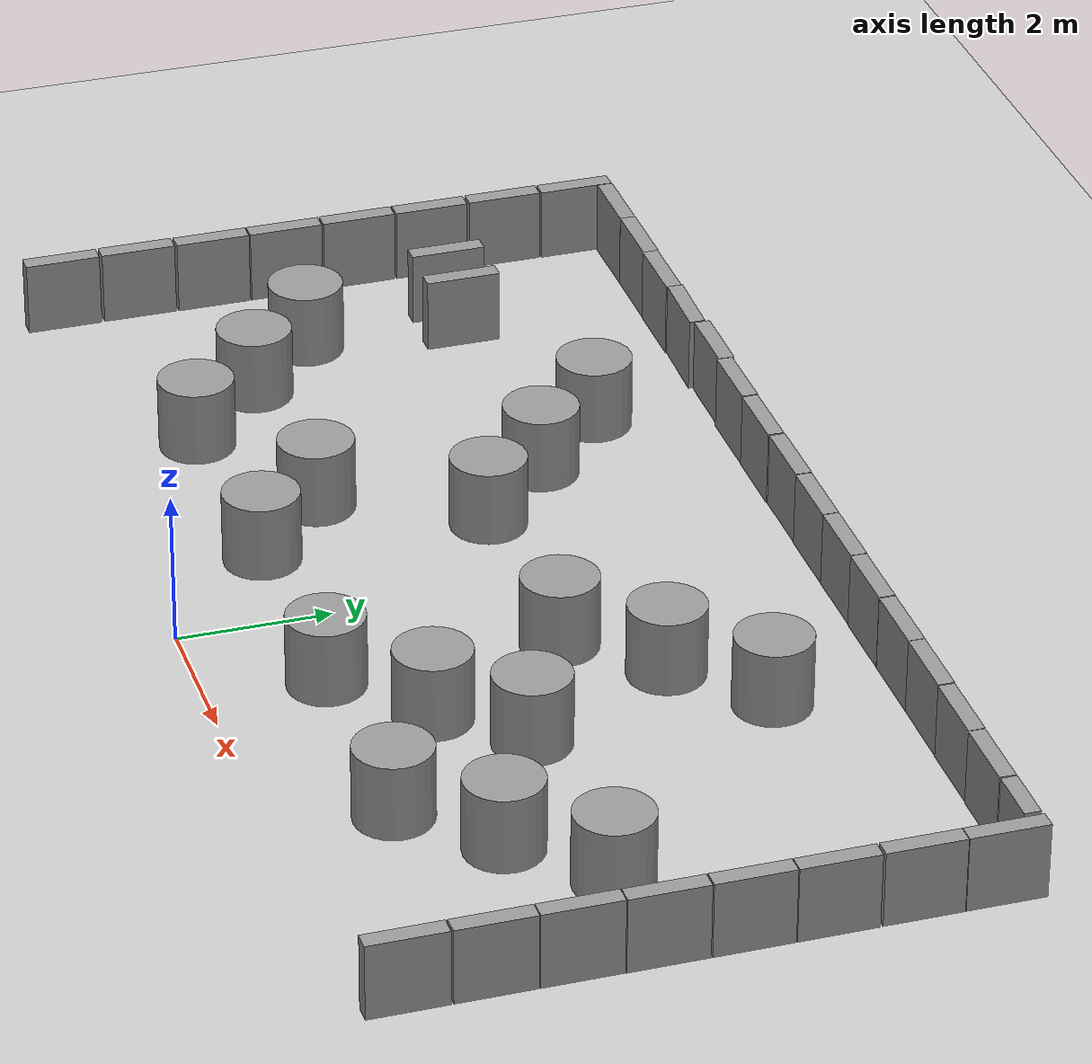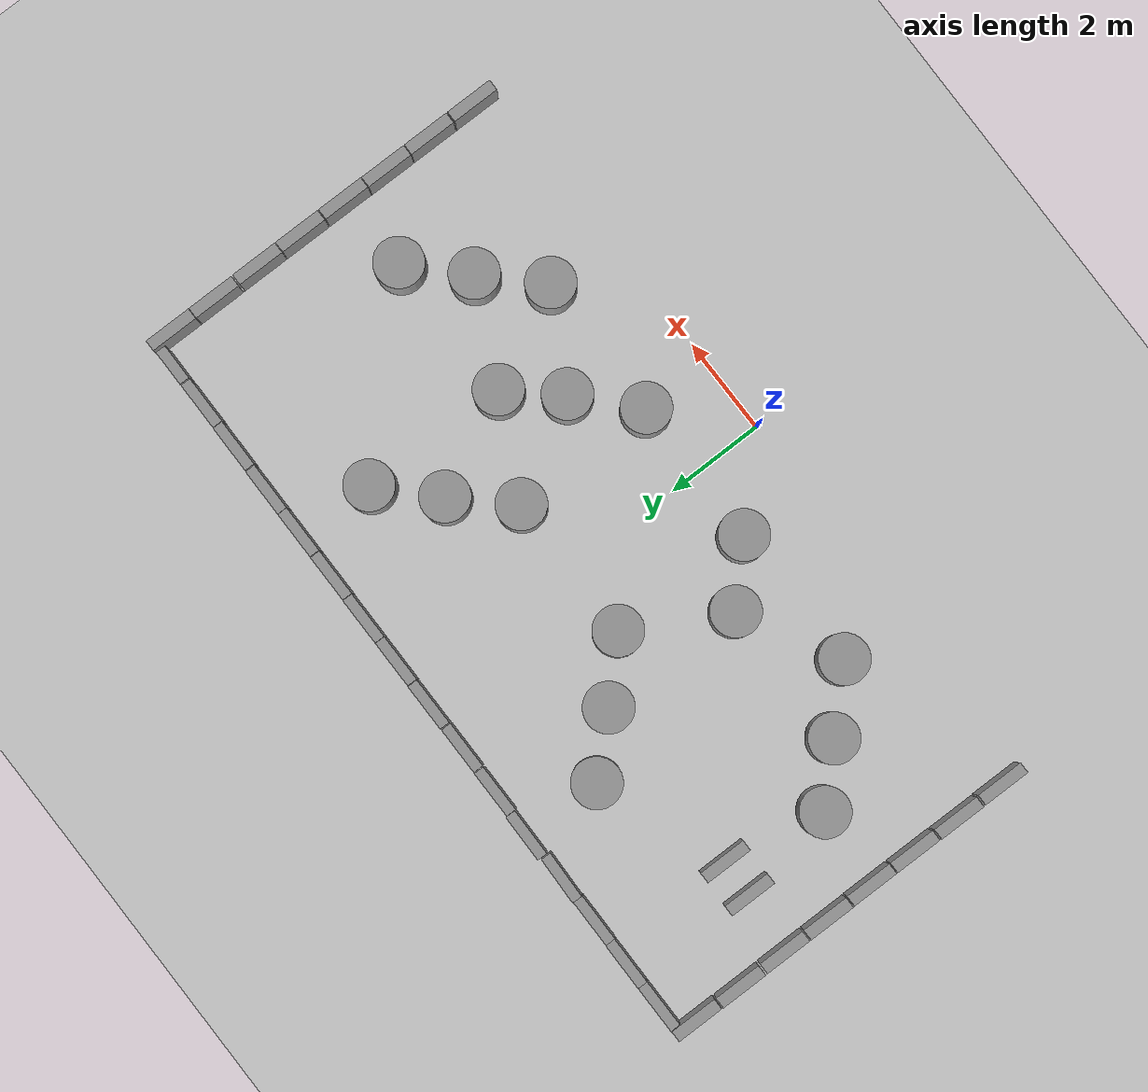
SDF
<sdf version="1.6">
 <world name="default">
  <model name="ground_plane">
   <static>1</static>
   <static>1</static>
   <link name="link">
    <collision name="collision">
     <geometry><plane><normal>0 0 1</normal><size>100 100</size></plane></geometry>
     <surface><friction><ode><mu>100</mu><mu2>50</mu2></ode></friction></surface>
    </collision>
    <visual name="visual">
     <cast_shadows>0</cast_shadows>
     <geometry><plane><normal>0 0 1</normal><size>100 100</size></plane></geometry>
     <material>
      <script><uri>file://media/materials/scripts/gazebo.material</uri><name>Gazebo/Grey</name></script>
     </material>
    </visual>
   </link>
  </model>
  <model name="unit_box_clone">
   <pose>-7.49845 8.11997 0.499999 1e-06 -2e-06 0.000235</pose>
   <link name="link">
    <inertial>
     <mass>1</mass>
     <inertia>
      <ixx>0.166667</ixx>
      <ixy>0</ixy>
      <ixz>0</ixz>
      <iyy>0.166667</iyy>
      <iyz>0</iyz>
      <izz>0.166667</izz>
     </inertia>
    </inertial>
    <collision name="collision"><geometry><box><size>1 0.210541 1</size></box></geometry></collision>
    <visual name="visual">
     <geometry><box><size>1 0.210541 1</size></box></geometry>
     <material>
      <script><name>Gazebo/Grey</name><uri>file://media/materials/scripts/gazebo.material</uri></script>
     </material>
    </visual>
   </link>
  </model>
  <model name="unit_box_clone_0">
   <pose>-6.4973 8.11987 0.499999 -1e-06 -2e-06 -0.002335</pose>
   <link name="link">
    <inertial>
     <mass>1</mass>
     <inertia>
      <ixx>0.166667</ixx>
      <ixy>0</ixy>
      <ixz>0</ixz>
      <iyy>0.166667</iyy>
      <iyz>0</iyz>
      <izz>0.166667</izz>
     </inertia>
    </inertial>
    <collision name="collision"><geometry><box><size>1 0.210541 1</size></box></geometry></collision>
    <visual name="visual">
     <geometry><box><size>1 0.210541 1</size></box></geometry>
     <material>
      <script><name>Gazebo/Grey</name><uri>file://media/materials/scripts/gazebo.material</uri></script>
     </material>
    </visual>
   </link>
  </model>
  <model name="unit_box_clone_1">
   <pose>-5.49732 8.10862 0.499999 -1e-06 -2e-06 -0.002327</pose>
   <link name="link">
    <inertial>
     <mass>1</mass>
     <inertia>
      <ixx>0.166667</ixx>
      <ixy>0</ixy>
      <ixz>0</ixz>
      <iyy>0.166667</iyy>
      <iyz>0</iyz>
      <izz>0.166667</izz>
     </inertia>
    </inertial>
    <collision name="collision"><geometry><box><size>1 0.210541 1</size></box></geometry></collision>
    <visual name="visual">
     <geometry><box><size>1 0.210541 1</size></box></geometry>
     <material>
      <script><name>Gazebo/Grey</name><uri>file://media/materials/scripts/gazebo.material</uri></script>
     </material>
    </visual>
   </link>
  </model>
  <model name="unit_box_clone_2">
   <pose>-4.49485 8.1107 0.499999 -1e-06 -2e-06 -0.026921</pose>
   <link name="link">
    <inertial>
     <mass>1</mass>
     <inertia>
      <ixx>0.166667</ixx>
      <ixy>0</ixy>
      <ixz>0</ixz>
      <iyy>0.166667</iyy>
      <iyz>0</iyz>
      <izz>0.166667</izz>
     </inertia>
    </inertial>
    <collision name="collision"><geometry><box><size>1 0.210541 1</size></box></geometry></collision>
    <visual name="visual">
     <geometry><box><size>1 0.210541 1</size></box></geometry>
     <material>
      <script><name>Gazebo/Grey</name><uri>file://media/materials/scripts/gazebo.material</uri></script>
     </material>
    </visual>
   </link>
  </model>
  <model name="unit_box_clone_3">
   <pose>-3.46835 8.15012 0.499999 1e-06 2e-06 -0.007855</pose>
   <link name="link">
    <inertial>
     <mass>1</mass>
     <inertia>
      <ixx>0.166667</ixx>
      <ixy>0</ixy>
      <ixz>0</ixz>
      <iyy>0.166667</iyy>
      <iyz>0</iyz>
      <izz>0.166667</izz>
     </inertia>
    </inertial>
    <collision name="collision"><geometry><box><size>1 0.210541 1</size></box></geometry></collision>
    <visual name="visual">
     <geometry><box><size>1 0.210541 1</size></box></geometry>
     <material>
      <script><name>Gazebo/Grey</name><uri>file://media/materials/scripts/gazebo.material</uri></script>
     </material>
    </visual>
   </link>
  </model>
  <model name="unit_box_clone_4">
   <pose>-2.46316 8.11866 0.499999 1e-06 -2e-06 0.000235</pose>
   <link name="link">
    <inertial>
     <mass>1</mass>
     <inertia>
      <ixx>0.166667</ixx>
      <ixy>0</ixy>
      <ixz>0</ixz>
      <iyy>0.166667</iyy>
      <iyz>0</iyz>
      <izz>0.166667</izz>
     </inertia>
    </inertial>
    <collision name="collision"><geometry><box><size>1 0.210541 1</size></box></geometry></collision>
    <visual name="visual">
     <geometry><box><size>1 0.210541 1</size></box></geometry>
     <material>
      <script><name>Gazebo/Grey</name><uri>file://media/materials/scripts/gazebo.material</uri></script>
     </material>
    </visual>
   </link>
  </model>
  <model name="unit_box_clone_5">
   <pose>-1.44425 8.112 0.499999 1e-06 -2e-06 0.000235</pose>
   <link name="link">
    <inertial>
     <mass>1</mass>
     <inertia>
      <ixx>0.166667</ixx>
      <ixy>0</ixy>
      <ixz>0</ixz>
      <iyy>0.166667</iyy>
      <iyz>0</iyz>
      <izz>0.166667</izz>
     </inertia>
    </inertial>
    <collision name="collision"><geometry><box><size>1 0.210541 1</size></box></geometry></collision>
    <visual name="visual">
     <geometry><box><size>1 0.210541 1</size></box></geometry>
     <material>
      <script><name>Gazebo/Grey</name><uri>file://media/materials/scripts/gazebo.material</uri></script>
     </material>
    </visual>
   </link>
  </model>
  <model name="unit_box_clone_6">
   <pose>-0.418685 8.11865 0.499999 1e-06 -2e-06 0.000235</pose>
   <link name="link">
    <inertial>
     <mass>1</mass>
     <inertia>
      <ixx>0.166667</ixx>
      <ixy>0</ixy>
      <ixz>0</ixz>
      <iyy>0.166667</iyy>
      <iyz>0</iyz>
      <izz>0.166667</izz>
     </inertia>
    </inertial>
    <collision name="collision"><geometry><box><size>1 0.210541 1</size></box></geometry></collision>
    <visual name="visual">
     <geometry><box><size>1 0.210541 1</size></box></geometry>
     <material>
      <script><name>Gazebo/Grey</name><uri>file://media/materials/scripts/gazebo.material</uri></script>
     </material>
    </visual>
   </link>
  </model>
  <model name="unit_box_clone_7">
   <pose>0.592834 8.11152 0.499999 1e-06 -2e-06 0.000235</pose>
   <link name="link">
    <inertial>
     <mass>1</mass>
     <inertia>
      <ixx>0.166667</ixx>
      <ixy>0</ixy>
      <ixz>0</ixz>
      <iyy>0.166667</iyy>
      <iyz>0</iyz>
      <izz>0.166667</izz>
     </inertia>
    </inertial>
    <collision name="collision"><geometry><box><size>1 0.210541 1</size></box></geometry></collision>
    <visual name="visual">
     <geometry><box><size>1 0.210541 1</size></box></geometry>
     <material>
      <script><name>Gazebo/Grey</name><uri>file://media/materials/scripts/gazebo.material</uri></script>
     </material>
    </visual>
   </link>
  </model>
  <model name="unit_box_clone_8">
   <pose>1.60043 8.11003 0.499999 1e-06 -2e-06 0.000235</pose>
   <link name="link">
    <inertial>
     <mass>1</mass>
     <inertia>
      <ixx>0.166667</ixx>
      <ixy>0</ixy>
      <ixz>0</ixz>
      <iyy>0.166667</iyy>
      <iyz>0</iyz>
      <izz>0.166667</izz>
     </inertia>
    </inertial>
    <collision name="collision"><geometry><box><size>1 0.210541 1</size></box></geometry></collision>
    <visual name="visual">
     <geometry><box><size>1 0.210541 1</size></box></geometry>
     <material>
      <script><name>Gazebo/Grey</name><uri>file://media/materials/scripts/gazebo.material</uri></script>
     </material>
    </visual>
   </link>
  </model>
  <model name="unit_box_clone_9">
   <pose>2.60987 8.10284 0.499999 1e-06 -2e-06 0.000235</pose>
   <link name="link">
    <inertial>
     <mass>1</mass>
     <inertia>
      <ixx>0.166667</ixx>
      <ixy>0</ixy>
      <ixz>0</ixz>
      <iyy>0.166667</iyy>
      <iyz>0</iyz>
      <izz>0.166667</izz>
     </inertia>
    </inertial>
    <collision name="collision"><geometry><box><size>1 0.210541 1</size></box></geometry></collision>
    <visual name="visual">
     <geometry><box><size>1 0.210541 1</size></box></geometry>
     <material>
      <script><name>Gazebo/Grey</name><uri>file://media/materials/scripts/gazebo.material</uri></script>
     </material>
    </visual>
   </link>
  </model>
  <model name="unit_box_clone_10">
   <pose>3.62649 8.09925 0.499999 1e-06 -2e-06 0.000235</pose>
   <link name="link">
    <inertial>
     <mass>1</mass>
     <inertia>
      <ixx>0.166667</ixx>
      <ixy>0</ixy>
      <ixz>0</ixz>
      <iyy>0.166667</iyy>
      <iyz>0</iyz>
      <izz>0.166667</izz>
     </inertia>
    </inertial>
    <collision name="collision"><geometry><box><size>1 0.210541 1</size></box></geometry></collision>
    <visual name="visual">
     <geometry><box><size>1 0.210541 1</size></box></geometry>
     <material>
      <script><name>Gazebo/Grey</name><uri>file://media/materials/scripts/gazebo.material</uri></script>
     </material>
    </visual>
   </link>
  </model>
  <model name="unit_box_clone_11">
   <pose>4.6331 8.09522 0.5 0 -0 -0.003289</pose>
   <link name="link">
    <inertial>
     <mass>1</mass>
     <inertia>
      <ixx>0.166667</ixx>
      <ixy>0</ixy>
      <ixz>0</ixz>
      <iyy>0.166667</iyy>
      <iyz>0</iyz>
      <izz>0.166667</izz>
     </inertia>
    </inertial>
    <collision name="collision"><geometry><box><size>1 0.210541 1</size></box></geometry></collision>
    <visual name="visual">
     <geometry><box><size>1 0.210541 1</size></box></geometry>
     <material>
      <script><name>Gazebo/Grey</name><uri>file://media/materials/scripts/gazebo.material</uri></script>
     </material>
    </visual>
   </link>
  </model>
  <model name="unit_box_0_clone_0">
   <pose>8.11522 6.68458 0.5 0 0 -0.000279</pose>
   <link name="link">
    <inertial>
     <mass>1</mass>
     <inertia>
      <ixx>0.166667</ixx>
      <ixy>0</ixy>
      <ixz>0</ixz>
      <iyy>0.166667</iyy>
      <iyz>0</iyz>
      <izz>0.166667</izz>
     </inertia>
    </inertial>
    <collision name="collision"><geometry><box><size>0.230819 1 1</size></box></geometry></collision>
    <visual name="visual">
     <geometry><box><size>0.230819 1 1</size></box></geometry>
     <material>
      <script><name>Gazebo/Grey</name><uri>file://media/materials/scripts/gazebo.material</uri></script>
     </material>
    </visual>
   </link>
  </model>
  <model name="unit_box_0_clone_1">
   <pose>8.11915 5.6517 0.5 1e-06 1e-06 0.000116</pose>
   <link name="link">
    <inertial>
     <mass>1</mass>
     <inertia>
      <ixx>0.166667</ixx>
      <ixy>0</ixy>
      <ixz>0</ixz>
      <iyy>0.166667</iyy>
      <iyz>0</iyz>
      <izz>0.166667</izz>
     </inertia>
    </inertial>
    <collision name="collision"><geometry><box><size>0.230819 1 1</size></box></geometry></collision>
    <visual name="visual">
     <geometry><box><size>0.230819 1 1</size></box></geometry>
     <material>
      <script><name>Gazebo/Grey</name><uri>file://media/materials/scripts/gazebo.material</uri></script>
     </material>
    </visual>
   </link>
  </model>
  <model name="unit_box_0_clone_2">
   <pose>8.11914 4.64016 0.5 1e-06 1e-06 0.00021</pose>
   <link name="link">
    <inertial>
     <mass>1</mass>
     <inertia>
      <ixx>0.166667</ixx>
      <ixy>0</ixy>
      <ixz>0</ixz>
      <iyy>0.166667</iyy>
      <iyz>0</iyz>
      <izz>0.166667</izz>
     </inertia>
    </inertial>
    <collision name="collision"><geometry><box><size>0.230819 1 1</size></box></geometry></collision>
    <visual name="visual">
     <geometry><box><size>0.230819 1 1</size></box></geometry>
     <material>
      <script><name>Gazebo/Grey</name><uri>file://media/materials/scripts/gazebo.material</uri></script>
     </material>
    </visual>
   </link>
  </model>
  <model name="unit_box_0_clone_3">
   <pose>8.11914 3.62228 0.5 1e-06 1e-06 0.000191</pose>
   <link name="link">
    <inertial>
     <mass>1</mass>
     <inertia>
      <ixx>0.166667</ixx>
      <ixy>0</ixy>
      <ixz>0</ixz>
      <iyy>0.166667</iyy>
      <iyz>0</iyz>
      <izz>0.166667</izz>
     </inertia>
    </inertial>
    <collision name="collision"><geometry><box><size>0.230819 1 1</size></box></geometry></collision>
    <visual name="visual">
     <geometry><box><size>0.230819 1 1</size></box></geometry>
     <material>
      <script><name>Gazebo/Grey</name><uri>file://media/materials/scripts/gazebo.material</uri></script>
     </material>
    </visual>
   </link>
  </model>
  <model name="unit_box_0_clone_4">
   <pose>8.11332 2.61063 0.5 1e-06 1e-06 -0.001045</pose>
   <link name="link">
    <inertial>
     <mass>1</mass>
     <inertia>
      <ixx>0.166667</ixx>
      <ixy>0</ixy>
      <ixz>0</ixz>
      <iyy>0.166667</iyy>
      <iyz>0</iyz>
      <izz>0.166667</izz>
     </inertia>
    </inertial>
    <collision name="collision"><geometry><box><size>0.230819 1 1</size></box></geometry></collision>
    <visual name="visual">
     <geometry><box><size>0.230819 1 1</size></box></geometry>
     <material>
      <script><name>Gazebo/Grey</name><uri>file://media/materials/scripts/gazebo.material</uri></script>
     </material>
    </visual>
   </link>
  </model>
  <model name="unit_box_0_clone_5">
   <pose>8.11277 1.59919 0.5 1e-06 1e-06 0.000191</pose>
   <link name="link">
    <inertial>
     <mass>1</mass>
     <inertia>
      <ixx>0.166667</ixx>
      <ixy>0</ixy>
      <ixz>0</ixz>
      <iyy>0.166667</iyy>
      <iyz>0</iyz>
      <izz>0.166667</izz>
     </inertia>
    </inertial>
    <collision name="collision"><geometry><box><size>0.230819 1 1</size></box></geometry></collision>
    <visual name="visual">
     <geometry><box><size>0.230819 1 1</size></box></geometry>
     <material>
      <script><name>Gazebo/Grey</name><uri>file://media/materials/scripts/gazebo.material</uri></script>
     </material>
    </visual>
   </link>
  </model>
  <model name="unit_box_0_clone_6">
   <pose>8.11277 0.574937 0.5 1e-06 1e-06 0.000191</pose>
   <link name="link">
    <inertial>
     <mass>1</mass>
     <inertia>
      <ixx>0.166667</ixx>
      <ixy>0</ixy>
      <ixz>0</ixz>
      <iyy>0.166667</iyy>
      <iyz>0</iyz>
      <izz>0.166667</izz>
     </inertia>
    </inertial>
    <collision name="collision"><geometry><box><size>0.230819 1 1</size></box></geometry></collision>
    <visual name="visual">
     <geometry><box><size>0.230819 1 1</size></box></geometry>
     <material>
      <script><name>Gazebo/Grey</name><uri>file://media/materials/scripts/gazebo.material</uri></script>
     </material>
    </visual>
   </link>
  </model>
  <model name="unit_box_0_clone_4_clone">
   <pose>-8.12647 7.71769 0.5 1e-06 1e-06 0.000191</pose>
   <link name="link">
    <inertial>
     <mass>1</mass>
     <inertia>
      <ixx>0.166667</ixx>
      <ixy>0</ixy>
      <ixz>0</ixz>
      <iyy>0.166667</iyy>
      <iyz>0</iyz>
      <izz>0.166667</izz>
     </inertia>
    </inertial>
    <collision name="collision"><geometry><box><size>0.230819 1 1</size></box></geometry></collision>
    <visual name="visual">
     <geometry><box><size>0.230819 1 1</size></box></geometry>
     <material>
      <script><name>Gazebo/Grey</name><uri>file://media/materials/scripts/gazebo.material</uri></script>
     </material>
    </visual>
   </link>
  </model>
  <model name="unit_box_0_clone_4_clone_0">
   <pose>-8.13281 6.68715 0.5 1e-06 1e-06 0.000191</pose>
   <link name="link">
    <inertial>
     <mass>1</mass>
     <inertia>
      <ixx>0.166667</ixx>
      <ixy>0</ixy>
      <ixz>0</ixz>
      <iyy>0.166667</iyy>
      <iyz>0</iyz>
      <izz>0.166667</izz>
     </inertia>
    </inertial>
    <collision name="collision"><geometry><box><size>0.230819 1 1</size></box></geometry></collision>
    <visual name="visual">
     <geometry><box><size>0.230819 1 1</size></box></geometry>
     <material>
      <script><name>Gazebo/Grey</name><uri>file://media/materials/scripts/gazebo.material</uri></script>
     </material>
    </visual>
   </link>
  </model>
  <model name="unit_box_0_clone_4_clone_1">
   <pose>-8.12606 5.64722 0.5 1e-06 1e-06 0.000191</pose>
   <link name="link">
    <inertial>
     <mass>1</mass>
     <inertia>
      <ixx>0.166667</ixx>
      <ixy>0</ixy>
      <ixz>0</ixz>
      <iyy>0.166667</iyy>
      <iyz>0</iyz>
      <izz>0.166667</izz>
     </inertia>
    </inertial>
    <collision name="collision"><geometry><box><size>0.230819 1 1</size></box></geometry></collision>
    <visual name="visual">
     <geometry><box><size>0.230819 1 1</size></box></geometry>
     <material>
      <script><name>Gazebo/Grey</name><uri>file://media/materials/scripts/gazebo.material</uri></script>
     </material>
    </visual>
   </link>
  </model>
  <model name="unit_box_0_clone_4_clone_2">
   <pose>-8.12607 4.6208 0.5 1e-06 1e-06 0.000191</pose>
   <link name="link">
    <inertial>
     <mass>1</mass>
     <inertia>
      <ixx>0.166667</ixx>
      <ixy>0</ixy>
      <ixz>0</ixz>
      <iyy>0.166667</iyy>
      <iyz>0</iyz>
      <izz>0.166667</izz>
     </inertia>
    </inertial>
    <collision name="collision"><geometry><box><size>0.230819 1 1</size></box></geometry></collision>
    <visual name="visual">
     <geometry><box><size>0.230819 1 1</size></box></geometry>
     <material>
      <script><name>Gazebo/Grey</name><uri>file://media/materials/scripts/gazebo.material</uri></script>
     </material>
    </visual>
   </link>
  </model>
  <model name="unit_box_0_clone_4_clone_3">
   <pose>-8.11932 3.59437 0.5 1e-06 1e-06 0.000191</pose>
   <link name="link">
    <inertial>
     <mass>1</mass>
     <inertia>
      <ixx>0.166667</ixx>
      <ixy>0</ixy>
      <ixz>0</ixz>
      <iyy>0.166667</iyy>
      <iyz>0</iyz>
      <izz>0.166667</izz>
     </inertia>
    </inertial>
    <collision name="collision"><geometry><box><size>0.230819 1 1</size></box></geometry></collision>
    <visual name="visual">
     <geometry><box><size>0.230819 1 1</size></box></geometry>
     <material>
      <script><name>Gazebo/Grey</name><uri>file://media/materials/scripts/gazebo.material</uri></script>
     </material>
    </visual>
   </link>
  </model>
  <model name="unit_box_0_clone_4_clone_4">
   <pose>-8.11932 2.57471 0.5 1e-06 1e-06 0.000191</pose>
   <link name="link">
    <inertial>
     <mass>1</mass>
     <inertia>
      <ixx>0.166667</ixx>
      <ixy>0</ixy>
      <ixz>0</ixz>
      <iyy>0.166667</iyy>
      <iyz>0</iyz>
      <izz>0.166667</izz>
     </inertia>
    </inertial>
    <collision name="collision"><geometry><box><size>0.230819 1 1</size></box></geometry></collision>
    <visual name="visual">
     <geometry><box><size>0.230819 1 1</size></box></geometry>
     <material>
      <script><name>Gazebo/Grey</name><uri>file://media/materials/scripts/gazebo.material</uri></script>
     </material>
    </visual>
   </link>
  </model>
  <model name="unit_box_0_clone_4_clone_5">
   <pose>-8.12608 1.54157 0.5 1e-06 1e-06 0.000191</pose>
   <link name="link">
    <inertial>
     <mass>1</mass>
     <inertia>
      <ixx>0.166667</ixx>
      <ixy>0</ixy>
      <ixz>0</ixz>
      <iyy>0.166667</iyy>
      <iyz>0</iyz>
      <izz>0.166667</izz>
     </inertia>
    </inertial>
    <collision name="collision"><geometry><box><size>0.230819 1 1</size></box></geometry></collision>
    <visual name="visual">
     <geometry><box><size>0.230819 1 1</size></box></geometry>
     <material>
      <script><name>Gazebo/Grey</name><uri>file://media/materials/scripts/gazebo.material</uri></script>
     </material>
    </visual>
   </link>
  </model>
  <model name="unit_box_0_clone_4_clone_6">
   <pose>-8.11933 0.501629 0.5 1e-06 1e-06 0.000191</pose>
   <link name="link">
    <inertial>
     <mass>1</mass>
     <inertia>
      <ixx>0.166667</ixx>
      <ixy>0</ixy>
      <ixz>0</ixz>
      <iyy>0.166667</iyy>
      <iyz>0</iyz>
      <izz>0.166667</izz>
     </inertia>
    </inertial>
    <collision name="collision"><geometry><box><size>0.230819 1 1</size></box></geometry></collision>
    <visual name="visual">
     <geometry><box><size>0.230819 1 1</size></box></geometry>
     <material>
      <script><name>Gazebo/Grey</name><uri>file://media/materials/scripts/gazebo.material</uri></script>
     </material>
    </visual>
   </link>
  </model>
  <model name="unit_box_0_clone_0_clone">
   <pose>8.11438 7.69322 0.5 1e-06 1e-06 9.8e-05</pose>
   <link name="link">
    <inertial>
     <mass>1</mass>
     <inertia>
      <ixx>0.166667</ixx>
      <ixy>0</ixy>
      <ixz>0</ixz>
      <iyy>0.166667</iyy>
      <iyz>0</iyz>
      <izz>0.166667</izz>
     </inertia>
    </inertial>
    <collision name="collision"><geometry><box><size>0.230819 1 1</size></box></geometry></collision>
    <visual name="visual">
     <geometry><box><size>0.230819 1 1</size></box></geometry>
     <material>
      <script><name>Gazebo/Grey</name><uri>file://media/materials/scripts/gazebo.material</uri></script>
     </material>
    </visual>
   </link>
  </model>
  <model name="unit_box_clone_11_clone">
   <pose>5.6544 8.08358 0.499999 1e-06 2e-06 -0.003013</pose>
   <link name="link">
    <inertial>
     <mass>1</mass>
     <inertia>
      <ixx>0.166667</ixx>
      <ixy>0</ixy>
      <ixz>0</ixz>
      <iyy>0.166667</iyy>
      <iyz>0</iyz>
      <izz>0.166667</izz>
     </inertia>
    </inertial>
    <collision name="collision"><geometry><box><size>1 0.210541 1</size></box></geometry></collision>
    <visual name="visual">
     <geometry><box><size>1 0.210541 1</size></box></geometry>
     <material>
      <script><name>Gazebo/Grey</name><uri>file://media/materials/scripts/gazebo.material</uri></script>
     </material>
    </visual>
   </link>
  </model>
  <model name="unit_box_clone_11_clone_0">
   <pose>6.6644 8.07341 0.5 0 -0 -0.003211</pose>
   <link name="link">
    <inertial>
     <mass>1</mass>
     <inertia>
      <ixx>0.166667</ixx>
      <ixy>0</ixy>
      <ixz>0</ixz>
      <iyy>0.166667</iyy>
      <iyz>0</iyz>
      <izz>0.166667</izz>
     </inertia>
    </inertial>
    <collision name="collision"><geometry><box><size>1 0.210541 1</size></box></geometry></collision>
    <visual name="visual">
     <geometry><box><size>1 0.210541 1</size></box></geometry>
     <material>
      <script><name>Gazebo/Grey</name><uri>file://media/materials/scripts/gazebo.material</uri></script>
     </material>
    </visual>
   </link>
  </model>
  <model name="unit_box_clone_11_clone_1_clone">
   <pose>7.56438 8.07324 0.5 -1e-06 -1e-06 -0.004604</pose>
   <link name="link">
    <inertial>
     <mass>1</mass>
     <inertia>
      <ixx>0.166667</ixx>
      <ixy>0</ixy>
      <ixz>0</ixz>
      <iyy>0.166667</iyy>
      <iyz>0</iyz>
      <izz>0.166667</izz>
     </inertia>
    </inertial>
    <collision name="collision"><geometry><box><size>0.750223 0.210541 1</size></box></geometry></collision>
    <visual name="visual">
     <geometry><box><size>0.750223 0.210541 1</size></box></geometry>
     <material>
      <script><name>Gazebo/Grey</name><uri>file://media/materials/scripts/gazebo.material</uri></script>
     </material>
    </visual>
   </link>
  </model>
  <model name="unit_cylinder_clone">
   <pose>-1.49009 1.49927 0.499997 4e-06 2e-06 -0</pose>
   <link name="link">
    <inertial>
     <mass>1</mass>
     <inertia><ixx>0.145833</ixx><ixy>0</ixy><ixz>0</ixz><iyy>0.145833</iyy><iyz>0</iyz><izz>0.125</izz></inertia>
    </inertial>
    <collision name="collision">
     <geometry><cylinder><radius>0.5</radius><length>1</length></cylinder></geometry>
    </collision>
    <visual name="visual">
     <geometry><cylinder><radius>0.5</radius><length>1</length></cylinder></geometry>
     <material>
      <script><name>Gazebo/Grey</name><uri>file://media/materials/scripts/gazebo.material</uri></script>
     </material>
    </visual>
   </link>
  </model>
  <model name="unit_cylinder_clone_0">
   <pose>-2.53052 2.49544 0.499994 -4e-06 -3e-06 -0</pose>
   <link name="link">
    <inertial>
     <mass>1</mass>
     <inertia><ixx>0.145833</ixx><ixy>0</ixy><ixz>0</ixz><iyy>0.145833</iyy><iyz>0</iyz><izz>0.125</izz></inertia>
    </inertial>
    <collision name="collision">
     <geometry><cylinder><radius>0.5</radius><length>1</length></cylinder></geometry>
    </collision>
    <visual name="visual">
     <geometry><cylinder><radius>0.5</radius><length>1</length></cylinder></geometry>
     <material>
      <script><name>Gazebo/Grey</name><uri>file://media/materials/scripts/gazebo.material</uri></script>
     </material>
    </visual>
   </link>
  </model>
  <model name="unit_cylinder_clone_0_clone">
   <pose>1.52056 1.49925 0.499997 4e-06 3e-06 -0</pose>
   <link name="link">
    <inertial>
     <mass>1</mass>
     <inertia><ixx>0.145833</ixx><ixy>0</ixy><ixz>0</ixz><iyy>0.145833</iyy><iyz>0</iyz><izz>0.125</izz></inertia>
    </inertial>
    <collision name="collision">
     <geometry><cylinder><radius>0.5</radius><length>1</length></cylinder></geometry>
    </collision>
    <visual name="visual">
     <geometry><cylinder><radius>0.5</radius><length>1</length></cylinder></geometry>
     <material>
      <script><name>Gazebo/Grey</name><uri>file://media/materials/scripts/gazebo.material</uri></script>
     </material>
    </visual>
   </link>
  </model>
  <model name="unit_cylinder_clone_0_clone_0">
   <pose>2.62743 2.51755 0.499997 4e-06 3e-06 -0</pose>
   <link name="link">
    <inertial>
     <mass>1</mass>
     <inertia><ixx>0.145833</ixx><ixy>0</ixy><ixz>0</ixz><iyy>0.145833</iyy><iyz>0</iyz><izz>0.125</izz></inertia>
    </inertial>
    <collision name="collision">
     <geometry><cylinder><radius>0.5</radius><length>1</length></cylinder></geometry>
    </collision>
    <visual name="visual">
     <geometry><cylinder><radius>0.5</radius><length>1</length></cylinder></geometry>
     <material>
      <script><name>Gazebo/Grey</name><uri>file://media/materials/scripts/gazebo.material</uri></script>
     </material>
    </visual>
   </link>
  </model>
  <model name="unit_cylinder_clone_0_clone_5">
   <pose>-1.47717 4.46303 0.499998 3e-06 4e-06 -0</pose>
   <link name="link">
    <inertial>
     <mass>1</mass>
     <inertia><ixx>0.145833</ixx><ixy>0</ixy><ixz>0</ixz><iyy>0.145833</iyy><iyz>0</iyz><izz>0.125</izz></inertia>
    </inertial>
    <collision name="collision">
     <geometry><cylinder><radius>0.5</radius><length>1</length></cylinder></geometry>
    </collision>
    <visual name="visual">
     <geometry><cylinder><radius>0.5</radius><length>1</length></cylinder></geometry>
     <material>
      <script><name>Gazebo/Grey</name><uri>file://media/materials/scripts/gazebo.material</uri></script>
     </material>
    </visual>
   </link>
  </model>
  <model name="unit_cylinder_clone_0_clone_6">
   <pose>-2.50999 5.47973 0.499998 3e-06 4e-06 -0</pose>
   <link name="link">
    <inertial>
     <mass>1</mass>
     <inertia><ixx>0.145833</ixx><ixy>0</ixy><ixz>0</ixz><iyy>0.145833</iyy><iyz>0</iyz><izz>0.125</izz></inertia>
    </inertial>
    <collision name="collision">
     <geometry><cylinder><radius>0.5</radius><length>1</length></cylinder></geometry>
    </collision>
    <visual name="visual">
     <geometry><cylinder><radius>0.5</radius><length>1</length></cylinder></geometry>
     <material>
      <script><name>Gazebo/Grey</name><uri>file://media/materials/scripts/gazebo.material</uri></script>
     </material>
    </visual>
   </link>
  </model>
  <model name="unit_cylinder_clone_0_clone_7">
   <pose>-3.4944 6.51256 0.499996 4e-06 3e-06 -0</pose>
   <link name="link">
    <inertial>
     <mass>1</mass>
     <inertia><ixx>0.145833</ixx><ixy>0</ixy><ixz>0</ixz><iyy>0.145833</iyy><iyz>0</iyz><izz>0.125</izz></inertia>
    </inertial>
    <collision name="collision">
     <geometry><cylinder><radius>0.5</radius><length>1</length></cylinder></geometry>
    </collision>
    <visual name="visual">
     <geometry><cylinder><radius>0.5</radius><length>1</length></cylinder></geometry>
     <material>
      <script><name>Gazebo/Grey</name><uri>file://media/materials/scripts/gazebo.material</uri></script>
     </material>
    </visual>
   </link>
  </model>
  <model name="unit_cylinder_clone_0_clone_8">
   <pose>1.50835 4.46301 0.499994 -4e-06 -3e-06 -0</pose>
   <link name="link">
    <inertial>
     <mass>1</mass>
     <inertia><ixx>0.145833</ixx><ixy>0</ixy><ixz>0</ixz><iyy>0.145833</iyy><iyz>0</iyz><izz>0.125</izz></inertia>
    </inertial>
    <collision name="collision">
     <geometry><cylinder><radius>0.5</radius><length>1</length></cylinder></geometry>
    </collision>
    <visual name="visual">
     <geometry><cylinder><radius>0.5</radius><length>1</length></cylinder></geometry>
     <material>
      <script><name>Gazebo/Grey</name><uri>file://media/materials/scripts/gazebo.material</uri></script>
     </material>
    </visual>
   </link>
  </model>
  <model name="unit_cylinder_clone_0_clone_10">
   <pose>3.52561 6.51252 0.499992 -3e-06 2e-06 0</pose>
   <link name="link">
    <inertial>
     <mass>1</mass>
     <inertia><ixx>0.145833</ixx><ixy>0</ixy><ixz>0</ixz><iyy>0.145833</iyy><iyz>0</iyz><izz>0.125</izz></inertia>
    </inertial>
    <collision name="collision">
     <geometry><cylinder><radius>0.5</radius><length>1</length></cylinder></geometry>
    </collision>
    <visual name="visual">
     <geometry><cylinder><radius>0.5</radius><length>1</length></cylinder></geometry>
     <material>
      <script><name>Gazebo/Grey</name><uri>file://media/materials/scripts/gazebo.material</uri></script>
     </material>
    </visual>
   </link>
  </model>
  <model name="unit_cylinder_clone_0_clone_9">
   <pose>2.49278 5.51197 0.499992 -3e-06 2e-06 0</pose>
   <link name="link">
    <inertial>
     <mass>1</mass>
     <inertia><ixx>0.145833</ixx><ixy>0</ixy><ixz>0</ixz><iyy>0.145833</iyy><iyz>0</iyz><izz>0.125</izz></inertia>
    </inertial>
    <collision name="collision">
     <geometry><cylinder><radius>0.5</radius><length>1</length></cylinder></geometry>
    </collision>
    <visual name="visual">
     <geometry><cylinder><radius>0.5</radius><length>1</length></cylinder></geometry>
     <material>
      <script><name>Gazebo/Grey</name><uri>file://media/materials/scripts/gazebo.material</uri></script>
     </material>
    </visual>
   </link>
  </model>
  <model name="unit_cylinder_clone_0_clone_20">
   <pose>4.486 1.48902 0.499998 3e-06 -3e-06 0</pose>
   <link name="link">
    <inertial>
     <mass>1</mass>
     <inertia><ixx>0.145833</ixx><ixy>0</ixy><ixz>0</ixz><iyy>0.145833</iyy><iyz>0</iyz><izz>0.125</izz></inertia>
    </inertial>
    <collision name="collision">
     <geometry><cylinder><radius>0.5</radius><length>1</length></cylinder></geometry>
    </collision>
    <visual name="visual">
     <geometry><cylinder><radius>0.5</radius><length>1</length></cylinder></geometry>
     <material>
      <script><name>Gazebo/Grey</name><uri>file://media/materials/scripts/gazebo.material</uri></script>
     </material>
    </visual>
   </link>
  </model>
  <model name="unit_cylinder_clone_0_clone_21">
   <pose>5.49884 2.52411 0.499996 4e-06 2e-06 -0</pose>
   <link name="link">
    <inertial>
     <mass>1</mass>
     <inertia><ixx>0.145833</ixx><ixy>0</ixy><ixz>0</ixz><iyy>0.145833</iyy><iyz>0</iyz><izz>0.125</izz></inertia>
    </inertial>
    <collision name="collision">
     <geometry><cylinder><radius>0.5</radius><length>1</length></cylinder></geometry>
    </collision>
    <visual name="visual">
     <geometry><cylinder><radius>0.5</radius><length>1</length></cylinder></geometry>
     <material>
      <script><name>Gazebo/Grey</name><uri>file://media/materials/scripts/gazebo.material</uri></script>
     </material>
    </visual>
   </link>
  </model>
  <model name="unit_cylinder_clone_0_clone_22">
   <pose>6.52281 3.52581 0.499996 4e-06 2e-06 -0</pose>
   <link name="link">
    <inertial>
     <mass>1</mass>
     <inertia><ixx>0.145833</ixx><ixy>0</ixy><ixz>0</ixz><iyy>0.145833</iyy><iyz>0</iyz><izz>0.125</izz></inertia>
    </inertial>
    <collision name="collision">
     <geometry><cylinder><radius>0.5</radius><length>1</length></cylinder></geometry>
    </collision>
    <visual name="visual">
     <geometry><cylinder><radius>0.5</radius><length>1</length></cylinder></geometry>
     <material>
      <script><name>Gazebo/Grey</name><uri>file://media/materials/scripts/gazebo.material</uri></script>
     </material>
    </visual>
   </link>
  </model>
  <model name="unit_cylinder_clone_0_clone_23">
   <pose>3.4807 3.49425 0.499997 4e-06 3e-06 -0</pose>
   <link name="link">
    <inertial>
     <mass>1</mass>
     <inertia><ixx>0.145833</ixx><ixy>0</ixy><ixz>0</ixz><iyy>0.145833</iyy><iyz>0</iyz><izz>0.125</izz></inertia>
    </inertial>
    <collision name="collision">
     <geometry><cylinder><radius>0.5</radius><length>1</length></cylinder></geometry>
    </collision>
    <visual name="visual">
     <geometry><cylinder><radius>0.5</radius><length>1</length></cylinder></geometry>
     <material>
      <script><name>Gazebo/Grey</name><uri>file://media/materials/scripts/gazebo.material</uri></script>
     </material>
    </visual>
   </link>
  </model>
  <model name="unit_cylinder_clone_0_clone_25">
   <pose>-4.47418 1.4268 0.499998 3e-06 -3e-06 0</pose>
   <link name="link">
    <inertial>
     <mass>1</mass>
     <inertia><ixx>0.145833</ixx><ixy>0</ixy><ixz>0</ixz><iyy>0.145833</iyy><iyz>0</iyz><izz>0.125</izz></inertia>
    </inertial>
    <collision name="collision">
     <geometry><cylinder><radius>0.5</radius><length>1</length></cylinder></geometry>
    </collision>
    <visual name="visual">
     <geometry><cylinder><radius>0.5</radius><length>1</length></cylinder></geometry>
     <material>
      <script><name>Gazebo/Grey</name><uri>file://media/materials/scripts/gazebo.material</uri></script>
     </material>
    </visual>
   </link>
  </model>
  <model name="unit_cylinder_clone_0_clone_26">
   <pose>-5.53106 2.48369 0.499992 -3e-06 3e-06 0</pose>
   <link name="link">
    <inertial>
     <mass>1</mass>
     <inertia><ixx>0.145833</ixx><ixy>0</ixy><ixz>0</ixz><iyy>0.145833</iyy><iyz>0</iyz><izz>0.125</izz></inertia>
    </inertial>
    <collision name="collision">
     <geometry><cylinder><radius>0.5</radius><length>1</length></cylinder></geometry>
    </collision>
    <visual name="visual">
     <geometry><cylinder><radius>0.5</radius><length>1</length></cylinder></geometry>
     <material>
      <script><name>Gazebo/Grey</name><uri>file://media/materials/scripts/gazebo.material</uri></script>
     </material>
    </visual>
   </link>
  </model>
  <model name="unit_cylinder_clone_0_clone_27">
   <pose>-6.51975 3.45535 0.499992 -3e-06 4e-06 0</pose>
   <link name="link">
    <inertial>
     <mass>1</mass>
     <inertia><ixx>0.145833</ixx><ixy>0</ixy><ixz>0</ixz><iyy>0.145833</iyy><iyz>0</iyz><izz>0.125</izz></inertia>
    </inertial>
    <collision name="collision">
     <geometry><cylinder><radius>0.5</radius><length>1</length></cylinder></geometry>
    </collision>
    <visual name="visual">
     <geometry><cylinder><radius>0.5</radius><length>1</length></cylinder></geometry>
     <material>
      <script><name>Gazebo/Grey</name><uri>file://media/materials/scripts/gazebo.material</uri></script>
     </material>
    </visual>
   </link>
  </model>
  <model name="unit_box_0_clone_4_clone_0_clone">
   <pose>-6.87893 5.51299 0.5 0 -0 0.000213</pose>
   <link name="link">
    <inertial>
     <mass>1</mass>
     <inertia>
      <ixx>0.166667</ixx>
      <ixy>0</ixy>
      <ixz>0</ixz>
      <iyy>0.166667</iyy>
      <iyz>0</iyz>
      <izz>0.166667</izz>
     </inertia>
    </inertial>
    <collision name="collision"><geometry><box><size>0.230819 1 1</size></box></geometry></collision>
    <visual name="visual">
     <geometry><box><size>0.230819 1 1</size></box></geometry>
     <material>
      <script><name>Gazebo/Grey</name><uri>file://media/materials/scripts/gazebo.material</uri></script>
     </material>
    </visual>
   </link>
  </model>
  <model name="unit_box_0_clone_4_clone_0_clone_0">
   <pose>-6.11628 5.49709 0.500001 2e-06 -0 0.000223</pose>
   <link name="link">
    <inertial>
     <mass>1</mass>
     <inertia>
      <ixx>0.166667</ixx>
      <ixy>0</ixy>
      <ixz>0</ixz>
      <iyy>0.166667</iyy>
      <iyz>0</iyz>
      <izz>0.166667</izz>
     </inertia>
    </inertial>
    <collision name="collision"><geometry><box><size>0.230819 1 1</size></box></geometry></collision>
    <visual name="visual">
     <geometry><box><size>0.230819 1 1</size></box></geometry>
     <material>
      <script><name>Gazebo/Grey</name><uri>file://media/materials/scripts/gazebo.material</uri></script>
     </material>
    </visual>
   </link>
  </model>
 </world>
</sdf>
